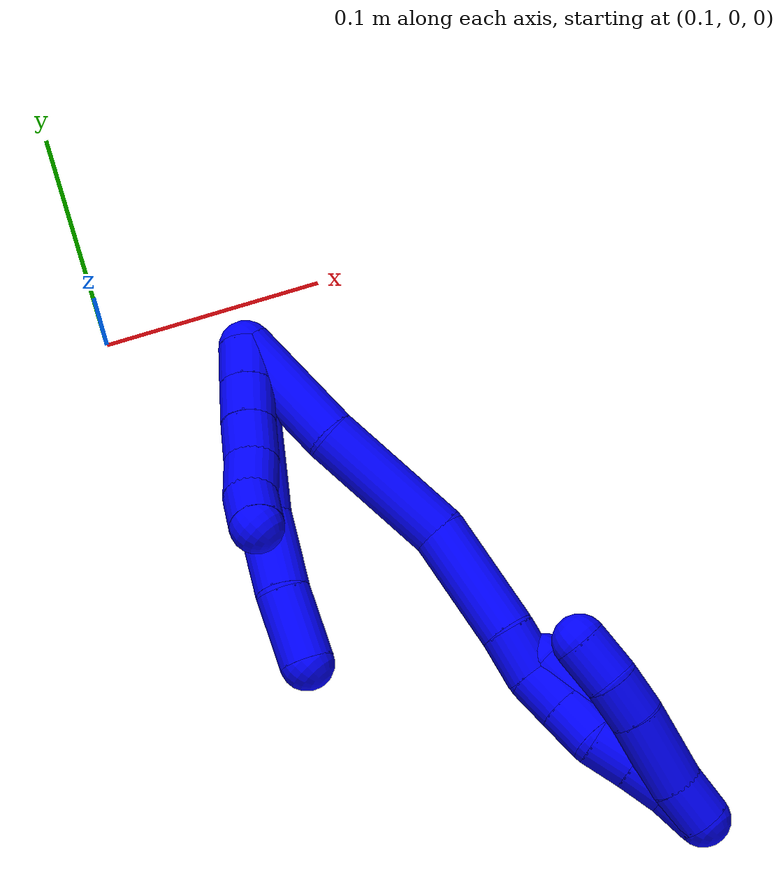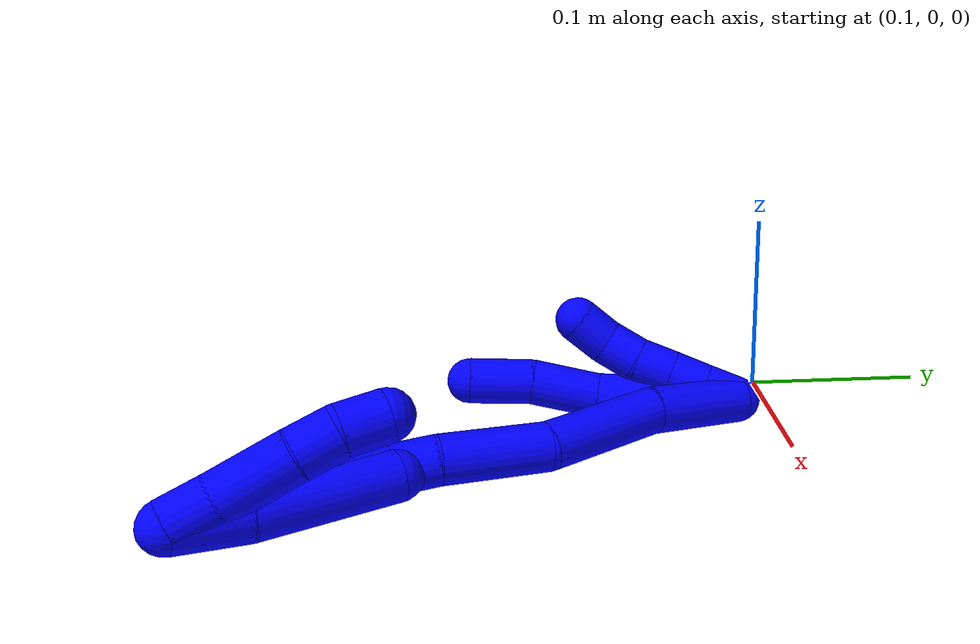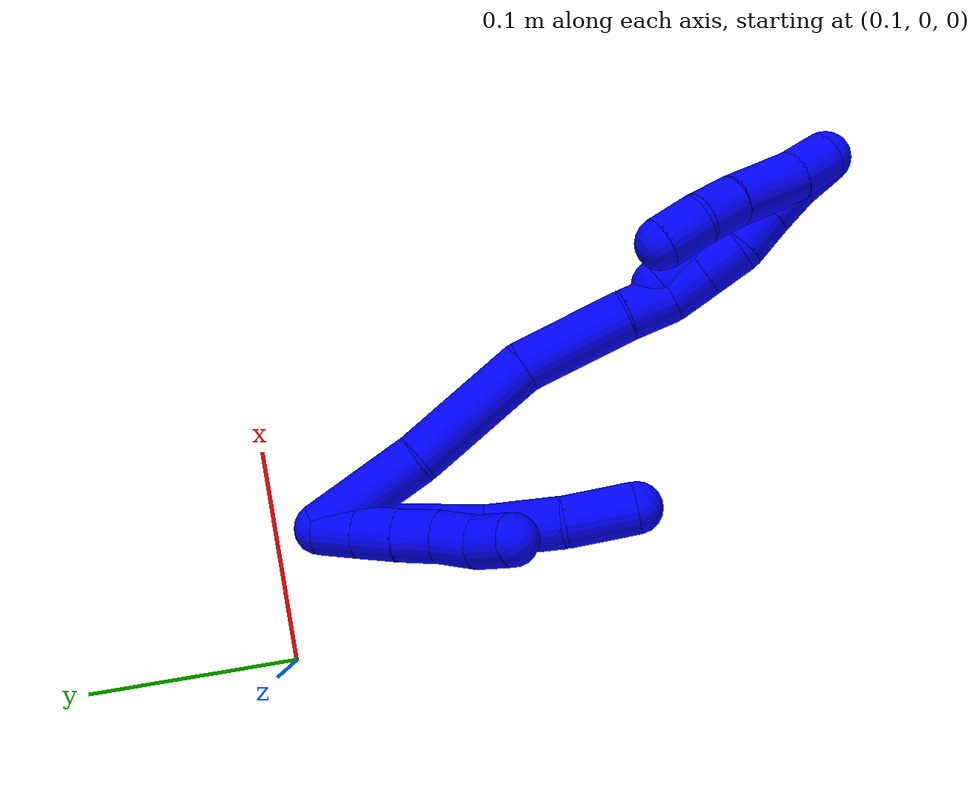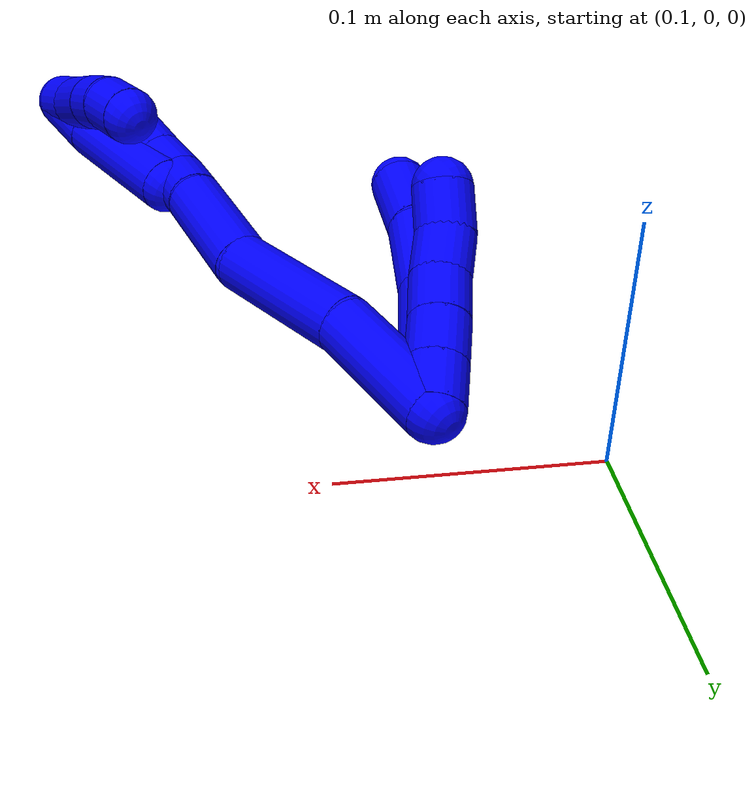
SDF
<sdf version="1.7">
 <world name="default">
  <plugin name="TubeGeneratorPlugin" filename="libtube_generator_plugin.so"/>
  <model name="photoneo_s_sensor">
   <static>1</static>
   <pose>0 0 2 1.57079 1.57079 3.14159</pose>
   <link name="link">
    <inertial><mass>0.1</mass></inertial>
    <sensor name="sensor" type="depth">
     <update_rate>30</update_rate>
     <camera>
      <horizontal_fov>1.22</horizontal_fov>
      <image><width>1920</width><height>1200</height><format>B8G8R8</format></image>
      <clip><near>0.1</near><far>4</far></clip>
      <depth_camera><output>points</output></depth_camera>
     </camera>
     <plugin name="camera_plugin" filename="libgazebo_ros_depth_camera.so">
      <baseline>0.2</baseline>
      <alwaysOn>1</alwaysOn>
      <updateRate>0.0</updateRate>
      <cameraName>camera_ir</cameraName>
      <imageTopicName>/camera/color/image_raw</imageTopicName>
      <cameraInfoTopicName>/camera/color/camera_info</cameraInfoTopicName>
      <depthImageTopicName>/camera/depth/image_raw</depthImageTopicName>
      <depthImageCameraInfoTopicName>/camera/depth/camera_info</depthImageCameraInfoTopicName>
      <pointCloudTopicName>/camera/depth/points</pointCloudTopicName>
      <frameName>fr_optical</frameName>
      <pointCloudCutoff>0.1</pointCloudCutoff>
      <pointCloudCutoffMax>2.0</pointCloudCutoffMax>
      <distortionK1>0</distortionK1>
      <distortionK2>0</distortionK2>
      <distortionK3>0</distortionK3>
      <distortionT1>0</distortionT1>
      <distortionT2>0</distortionT2>
      <CxPrime>0</CxPrime>
      <Cx>0</Cx>
      <Cy>0</Cy>
      <focalLength>0</focalLength>
      <hackBaseline>0</hackBaseline>
     </plugin>
    </sensor>
   </link>
  </model>
  <gravity>0 0 -9.8</gravity>
  <magnetic_field>6e-06 2.3e-05 -4.2e-05</magnetic_field>
  <atmosphere type="adiabatic"/>
  <physics name="default_physics" default="0" type="ode">
   <max_step_size>0.003</max_step_size>
   <real_time_factor>1</real_time_factor>
   <real_time_update_rate>1000</real_time_update_rate>
   <max_contacts>10000</max_contacts>
   <ode>
    <solver>
     <type>quick</type>
     <iters>100</iters>
     <sor>1.3</sor>
     <use_dynamic_moi_rescaling>0</use_dynamic_moi_rescaling>
    </solver>
    <constraints>
     <contact_max_correcting_vel>0</contact_max_correcting_vel>
     <contact_surface_layer>0.001</contact_surface_layer>
     <cfm>0</cfm>
     <erp>0.2</erp>
    </constraints>
   </ode>
  </physics>
  <scene><ambient>0.4 0.4 0.4 1</ambient><background>0.7 0.7 0.7 1</background><shadows>0</shadows></scene>
  <audio><device>default</device></audio>
  <spherical_coordinates>
   <surface_model>EARTH_WGS84</surface_model>
   <latitude_deg>0</latitude_deg>
   <longitude_deg>0</longitude_deg>
   <elevation>0</elevation>
   <heading_deg>0</heading_deg>
  </spherical_coordinates>
  <model name="bin">
   <static>1</static>
   <link name="bottom">
    <collision name="collision-bottom">
     <pose>0 0 -0.01 0 -0 0</pose>
     <geometry><box><size>0.8 0.6 0.02</size></box></geometry>
     <surface>
      <friction><ode><mu>100</mu><mu2>100</mu2></ode></friction>
      <contact><collide_bitmask>65535</collide_bitmask></contact>
     </surface>
    </collision>
   </link>
   <link name="west_wall">
    <collision name="collision-west_wall">
     <pose>-0.41 0 0.1 0 -0 0</pose>
     <geometry><box><size>0.02 0.6 0.2</size></box></geometry>
     <surface>
      <friction><ode><mu>100</mu><mu2>100</mu2></ode></friction>
      <contact><collide_bitmask>65535</collide_bitmask></contact>
     </surface>
    </collision>
   </link>
   <link name="east_wall">
    <collision name="collision-east_wall">
     <pose>0.41 0 0.1 0 -0 0</pose>
     <geometry><box><size>0.02 0.6 0.2</size></box></geometry>
     <surface>
      <friction><ode><mu>100</mu><mu2>100</mu2></ode></friction>
      <contact><collide_bitmask>65535</collide_bitmask></contact>
     </surface>
    </collision>
   </link>
   <link name="south_wall">
    <collision name="collision-south_wall">
     <pose>0 -0.31 0.1 0 -0 0</pose>
     <geometry><box><size>0.8 0.02 0.2</size></box></geometry>
     <surface>
      <friction><ode><mu>100</mu><mu2>100</mu2></ode></friction>
      <contact><collide_bitmask>65535</collide_bitmask></contact>
     </surface>
    </collision>
   </link>
   <link name="north_wall">
    <collision name="collision-north_wall">
     <pose>0 0.31 0.1 0 -0 0</pose>
     <geometry><box><size>0.8 0.02 0.2</size></box></geometry>
     <surface>
      <friction><ode><mu>100</mu><mu2>100</mu2></ode></friction>
      <contact><collide_bitmask>65535</collide_bitmask></contact>
     </surface>
    </collision>
   </link>
  </model>
  <model name="1">
   <static>0</static>
   <link name="1">
    <collision name="collision-cylinder-e_1_2_8">
     <pose>0.006554 -0.022432 0.031227 0.622931 0.168828 0.054469</pose>
     <geometry><cylinder><radius>0.0125</radius><length>0.078006</length></cylinder></geometry>
     <surface>
      <friction><ode><mu>1.16</mu><mu2>1.16</mu2><slip1>0</slip1><slip2>0</slip2></ode></friction>
      <contact><ode><kp>1e+06</kp><kd>1</kd><max_vel>0</max_vel><min_depth>0.001</min_depth></ode></contact>
     </surface>
    </collision>
    <visual name="visual-cylinder-e_1_2_8">
     <pose>0.006554 -0.022432 0.031227 0.622931 0.168828 0.054469</pose>
     <geometry><cylinder><radius>0.0125</radius><length>0.078006</length></cylinder></geometry>
     <material><ambient>0 0 1 1</ambient></material>
    </visual>
    <collision name="collision-cylinder-e_2_8_9">
     <pose>0.011634 -0.054156 0.078929 0.513543 -0.077746 -0.020423</pose>
     <geometry><cylinder><radius>0.0125</radius><length>0.037946</length></cylinder></geometry>
     <surface>
      <friction><ode><mu>1.16</mu><mu2>1.16</mu2><slip1>0</slip1><slip2>0</slip2></ode></friction>
      <contact><ode><kp>1e+06</kp><kd>1</kd><max_vel>0</max_vel><min_depth>0.001</min_depth></ode></contact>
     </surface>
    </collision>
    <visual name="visual-cylinder-e_2_8_9">
     <pose>0.011634 -0.054156 0.078929 0.513543 -0.077746 -0.020423</pose>
     <geometry><cylinder><radius>0.0125</radius><length>0.037946</length></cylinder></geometry>
     <material><ambient>0 0 1 1</ambient></material>
    </visual>
    <collision name="collision-cylinder-e_3_9_6">
     <pose>0.011627 -0.070247 0.110943 0.412448 0.086256 0.018055</pose>
     <geometry><cylinder><radius>0.0125</radius><length>0.034048</length></cylinder></geometry>
     <surface>
      <friction><ode><mu>1.16</mu><mu2>1.16</mu2><slip1>0</slip1><slip2>0</slip2></ode></friction>
      <contact><ode><kp>1e+06</kp><kd>1</kd><max_vel>0</max_vel><min_depth>0.001</min_depth></ode></contact>
     </surface>
    </collision>
    <visual name="visual-cylinder-e_3_9_6">
     <pose>0.011627 -0.070247 0.110943 0.412448 0.086256 0.018055</pose>
     <geometry><cylinder><radius>0.0125</radius><length>0.034048</length></cylinder></geometry>
     <material><ambient>0 0 1 1</ambient></material>
    </visual>
    <collision name="collision-cylinder-e_1_2_10">
     <pose>-0.001684 -0.006431 0.00747 0.710835 -0.169234 -0.062946</pose>
     <geometry><cylinder><radius>0.0125</radius><length>0.02</length></cylinder></geometry>
     <surface>
      <friction><ode><mu>1.16</mu><mu2>1.16</mu2><slip1>0</slip1><slip2>0</slip2></ode></friction>
      <contact><ode><kp>1e+06</kp><kd>1</kd><max_vel>0</max_vel><min_depth>0.001</min_depth></ode></contact>
     </surface>
    </collision>
    <visual name="visual-cylinder-e_1_2_10">
     <pose>-0.001684 -0.006431 0.00747 0.710835 -0.169234 -0.062946</pose>
     <geometry><cylinder><radius>0.0125</radius><length>0.02</length></cylinder></geometry>
     <material><ambient>0 0 1 1</ambient></material>
    </visual>
    <collision name="collision-cylinder-e_2_10_11">
     <pose>-0.005239 -0.019229 0.022421 0.705079 -0.188138 -0.069395</pose>
     <geometry><cylinder><radius>0.0125</radius><length>0.02</length></cylinder></geometry>
     <surface>
      <friction><ode><mu>1.16</mu><mu2>1.16</mu2><slip1>0</slip1><slip2>0</slip2></ode></friction>
      <contact><ode><kp>1e+06</kp><kd>1</kd><max_vel>0</max_vel><min_depth>0.001</min_depth></ode></contact>
     </surface>
    </collision>
    <visual name="visual-cylinder-e_2_10_11">
     <pose>-0.005239 -0.019229 0.022421 0.705079 -0.188138 -0.069395</pose>
     <geometry><cylinder><radius>0.0125</radius><length>0.02</length></cylinder></geometry>
     <material><ambient>0 0 1 1</ambient></material>
    </visual>
    <collision name="collision-cylinder-e_3_11_12">
     <pose>-0.008974 -0.031636 0.037651 0.662127 -0.187583 -0.064642</pose>
     <geometry><cylinder><radius>0.0125</radius><length>0.02</length></cylinder></geometry>
     <surface>
      <friction><ode><mu>1.16</mu><mu2>1.16</mu2><slip1>0</slip1><slip2>0</slip2></ode></friction>
      <contact><ode><kp>1e+06</kp><kd>1</kd><max_vel>0</max_vel><min_depth>0.001</min_depth></ode></contact>
     </surface>
    </collision>
    <visual name="visual-cylinder-e_3_11_12">
     <pose>-0.008974 -0.031636 0.037651 0.662127 -0.187583 -0.064642</pose>
     <geometry><cylinder><radius>0.0125</radius><length>0.02</length></cylinder></geometry>
     <material><ambient>0 0 1 1</ambient></material>
    </visual>
    <collision name="collision-cylinder-e_4_12_13">
     <pose>-0.014003 -0.044249 0.052239 0.765458 -0.321967 -0.130563</pose>
     <geometry><cylinder><radius>0.0125</radius><length>0.02</length></cylinder></geometry>
     <surface>
      <friction><ode><mu>1.16</mu><mu2>1.16</mu2><slip1>0</slip1><slip2>0</slip2></ode></friction>
      <contact><ode><kp>1e+06</kp><kd>1</kd><max_vel>0</max_vel><min_depth>0.001</min_depth></ode></contact>
     </surface>
    </collision>
    <visual name="visual-cylinder-e_4_12_13">
     <pose>-0.014003 -0.044249 0.052239 0.765458 -0.321967 -0.130563</pose>
     <geometry><cylinder><radius>0.0125</radius><length>0.02</length></cylinder></geometry>
     <material><ambient>0 0 1 1</ambient></material>
    </visual>
    <collision name="collision-cylinder-e_5_13_5">
     <pose>-0.022266 -0.055524 0.066283 0.57832 -0.535032 -0.16272</pose>
     <geometry><cylinder><radius>0.0125</radius><length>0.02</length></cylinder></geometry>
     <surface>
      <friction><ode><mu>1.16</mu><mu2>1.16</mu2><slip1>0</slip1><slip2>0</slip2></ode></friction>
      <contact><ode><kp>1e+06</kp><kd>1</kd><max_vel>0</max_vel><min_depth>0.001</min_depth></ode></contact>
     </surface>
    </collision>
    <visual name="visual-cylinder-e_5_13_5">
     <pose>-0.022266 -0.055524 0.066283 0.57832 -0.535032 -0.16272</pose>
     <geometry><cylinder><radius>0.0125</radius><length>0.02</length></cylinder></geometry>
     <material><ambient>0 0 1 1</ambient></material>
    </visual>
    <collision name="collision-cylinder-e_1_2_14">
     <pose>0.000318 6.2e-05 0.028342 -0.00219 0.011219 -1.2e-05</pose>
     <geometry><cylinder><radius>0.0125</radius><length>0.056689</length></cylinder></geometry>
     <surface>
      <friction><ode><mu>1.16</mu><mu2>1.16</mu2><slip1>0</slip1><slip2>0</slip2></ode></friction>
      <contact><ode><kp>1e+06</kp><kd>1</kd><max_vel>0</max_vel><min_depth>0.001</min_depth></ode></contact>
     </surface>
    </collision>
    <visual name="visual-cylinder-e_1_2_14">
     <pose>0.000318 6.2e-05 0.028342 -0.00219 0.011219 -1.2e-05</pose>
     <geometry><cylinder><radius>0.0125</radius><length>0.056689</length></cylinder></geometry>
     <material><ambient>0 0 1 1</ambient></material>
    </visual>
    <collision name="collision-cylinder-e_2_14_15">
     <pose>0.005153 0.004053 0.088931 -0.121249 0.138171 -0.0084</pose>
     <geometry><cylinder><radius>0.0125</radius><length>0.065594</length></cylinder></geometry>
     <surface>
      <friction><ode><mu>1.16</mu><mu2>1.16</mu2><slip1>0</slip1><slip2>0</slip2></ode></friction>
      <contact><ode><kp>1e+06</kp><kd>1</kd><max_vel>0</max_vel><min_depth>0.001</min_depth></ode></contact>
     </surface>
    </collision>
    <visual name="visual-cylinder-e_2_14_15">
     <pose>0.005153 0.004053 0.088931 -0.121249 0.138171 -0.0084</pose>
     <geometry><cylinder><radius>0.0125</radius><length>0.065594</length></cylinder></geometry>
     <material><ambient>0 0 1 1</ambient></material>
    </visual>
    <collision name="collision-cylinder-e_3_15_16">
     <pose>0.0119 0.004065 0.148032 0.144824 0.081958 0.005948</pose>
     <geometry><cylinder><radius>0.0125</radius><length>0.054462</length></cylinder></geometry>
     <surface>
      <friction><ode><mu>1.16</mu><mu2>1.16</mu2><slip1>0</slip1><slip2>0</slip2></ode></friction>
      <contact><ode><kp>1e+06</kp><kd>1</kd><max_vel>0</max_vel><min_depth>0.001</min_depth></ode></contact>
     </surface>
    </collision>
    <visual name="visual-cylinder-e_3_15_16">
     <pose>0.0119 0.004065 0.148032 0.144824 0.081958 0.005948</pose>
     <geometry><cylinder><radius>0.0125</radius><length>0.054462</length></cylinder></geometry>
     <material><ambient>0 0 1 1</ambient></material>
    </visual>
    <collision name="collision-cylinder-e_4_16_17">
     <pose>0.016477 -0.001918 0.18588 0.185866 0.206943 0.019356</pose>
     <geometry><cylinder><radius>0.0125</radius><length>0.022859</length></cylinder></geometry>
     <surface>
      <friction><ode><mu>1.16</mu><mu2>1.16</mu2><slip1>0</slip1><slip2>0</slip2></ode></friction>
      <contact><ode><kp>1e+06</kp><kd>1</kd><max_vel>0</max_vel><min_depth>0.001</min_depth></ode></contact>
     </surface>
    </collision>
    <visual name="visual-cylinder-e_4_16_17">
     <pose>0.016477 -0.001918 0.18588 0.185866 0.206943 0.019356</pose>
     <geometry><cylinder><radius>0.0125</radius><length>0.022859</length></cylinder></geometry>
     <material><ambient>0 0 1 1</ambient></material>
    </visual>
    <collision name="collision-cylinder-e_5_17_18">
     <pose>0.018614 -0.004008 0.206886 0.002303 -0.021164 -2.4e-05</pose>
     <geometry><cylinder><radius>0.0125</radius><length>0.02003</length></cylinder></geometry>
     <surface>
      <friction><ode><mu>1.16</mu><mu2>1.16</mu2><slip1>0</slip1><slip2>0</slip2></ode></friction>
      <contact><ode><kp>1e+06</kp><kd>1</kd><max_vel>0</max_vel><min_depth>0.001</min_depth></ode></contact>
     </surface>
    </collision>
    <visual name="visual-cylinder-e_5_17_18">
     <pose>0.018614 -0.004008 0.206886 0.002303 -0.021164 -2.4e-05</pose>
     <geometry><cylinder><radius>0.0125</radius><length>0.02003</length></cylinder></geometry>
     <material><ambient>0 0 1 1</ambient></material>
    </visual>
    <collision name="collision-cylinder-e_6_18_19">
     <pose>0.017597 -0.004167 0.226988 0.013411 -0.079541 -0.000534</pose>
     <geometry><cylinder><radius>0.0125</radius><length>0.020246</length></cylinder></geometry>
     <surface>
      <friction><ode><mu>1.16</mu><mu2>1.16</mu2><slip1>0</slip1><slip2>0</slip2></ode></friction>
      <contact><ode><kp>1e+06</kp><kd>1</kd><max_vel>0</max_vel><min_depth>0.001</min_depth></ode></contact>
     </surface>
    </collision>
    <visual name="visual-cylinder-e_6_18_19">
     <pose>0.017597 -0.004167 0.226988 0.013411 -0.079541 -0.000534</pose>
     <geometry><cylinder><radius>0.0125</radius><length>0.020246</length></cylinder></geometry>
     <material><ambient>0 0 1 1</ambient></material>
    </visual>
    <collision name="collision-cylinder-e_7_19_20">
     <pose>0.017885 -0.001597 0.246663 -0.275066 0.109192 -0.015128</pose>
     <geometry><cylinder><radius>0.0125</radius><length>0.020037</length></cylinder></geometry>
     <surface>
      <friction><ode><mu>1.16</mu><mu2>1.16</mu2><slip1>0</slip1><slip2>0</slip2></ode></friction>
      <contact><ode><kp>1e+06</kp><kd>1</kd><max_vel>0</max_vel><min_depth>0.001</min_depth></ode></contact>
     </surface>
    </collision>
    <visual name="visual-cylinder-e_7_19_20">
     <pose>0.017885 -0.001597 0.246663 -0.275066 0.109192 -0.015128</pose>
     <geometry><cylinder><radius>0.0125</radius><length>0.020037</length></cylinder></geometry>
     <material><ambient>0 0 1 1</ambient></material>
    </visual>
    <collision name="collision-cylinder-e_8_20_21">
     <pose>0.020223 0.003415 0.265935 -0.233773 0.124534 -0.014642</pose>
     <geometry><cylinder><radius>0.0125</radius><length>0.020073</length></cylinder></geometry>
     <surface>
      <friction><ode><mu>1.16</mu><mu2>1.16</mu2><slip1>0</slip1><slip2>0</slip2></ode></friction>
      <contact><ode><kp>1e+06</kp><kd>1</kd><max_vel>0</max_vel><min_depth>0.001</min_depth></ode></contact>
     </surface>
    </collision>
    <visual name="visual-cylinder-e_8_20_21">
     <pose>0.020223 0.003415 0.265935 -0.233773 0.124534 -0.014642</pose>
     <geometry><cylinder><radius>0.0125</radius><length>0.020073</length></cylinder></geometry>
     <material><ambient>0 0 1 1</ambient></material>
    </visual>
    <collision name="collision-cylinder-e_9_21_1">
     <pose>0.022915 0.006799 0.285465 -0.109024 0.144946 -0.007923</pose>
     <geometry><cylinder><radius>0.0125</radius><length>0.020012</length></cylinder></geometry>
     <surface>
      <friction><ode><mu>1.16</mu><mu2>1.16</mu2><slip1>0</slip1><slip2>0</slip2></ode></friction>
      <contact><ode><kp>1e+06</kp><kd>1</kd><max_vel>0</max_vel><min_depth>0.001</min_depth></ode></contact>
     </surface>
    </collision>
    <visual name="visual-cylinder-e_9_21_1">
     <pose>0.022915 0.006799 0.285465 -0.109024 0.144946 -0.007923</pose>
     <geometry><cylinder><radius>0.0125</radius><length>0.020012</length></cylinder></geometry>
     <material><ambient>0 0 1 1</ambient></material>
    </visual>
    <collision name="collision-cylinder-e_1_1_22">
     <pose>0.019673 0.007719 0.285787 3.12512 -0.45748 -3.07087</pose>
     <geometry><cylinder><radius>0.0125</radius><length>0.021225</length></cylinder></geometry>
     <surface>
      <friction><ode><mu>1.16</mu><mu2>1.16</mu2><slip1>0</slip1><slip2>0</slip2></ode></friction>
      <contact><ode><kp>1e+06</kp><kd>1</kd><max_vel>0</max_vel><min_depth>0.001</min_depth></ode></contact>
     </surface>
    </collision>
    <visual name="visual-cylinder-e_1_1_22">
     <pose>0.019673 0.007719 0.285787 3.12512 -0.45748 -3.07087</pose>
     <geometry><cylinder><radius>0.0125</radius><length>0.021225</length></cylinder></geometry>
     <material><ambient>0 0 1 1</ambient></material>
    </visual>
    <collision name="collision-cylinder-e_2_22_23">
     <pose>0.005371 0.009185 0.260662 -3.038 -0.54978 2.778</pose>
     <geometry><cylinder><radius>0.0125</radius><length>0.036801</length></cylinder></geometry>
     <surface>
      <friction><ode><mu>1.16</mu><mu2>1.16</mu2><slip1>0</slip1><slip2>0</slip2></ode></friction>
      <contact><ode><kp>1e+06</kp><kd>1</kd><max_vel>0</max_vel><min_depth>0.001</min_depth></ode></contact>
     </surface>
    </collision>
    <visual name="visual-cylinder-e_2_22_23">
     <pose>0.005371 0.009185 0.260662 -3.038 -0.54978 2.778</pose>
     <geometry><cylinder><radius>0.0125</radius><length>0.036801</length></cylinder></geometry>
     <material><ambient>0 0 1 1</ambient></material>
    </visual>
    <collision name="collision-cylinder-e_3_23_24">
     <pose>-0.008903 0.011104 0.236108 -3.10847 -0.479812 3.00639</pose>
     <geometry><cylinder><radius>0.0125</radius><length>0.020189</length></cylinder></geometry>
     <surface>
      <friction><ode><mu>1.16</mu><mu2>1.16</mu2><slip1>0</slip1><slip2>0</slip2></ode></friction>
      <contact><ode><kp>1e+06</kp><kd>1</kd><max_vel>0</max_vel><min_depth>0.001</min_depth></ode></contact>
     </surface>
    </collision>
    <visual name="visual-cylinder-e_3_23_24">
     <pose>-0.008903 0.011104 0.236108 -3.10847 -0.479812 3.00639</pose>
     <geometry><cylinder><radius>0.0125</radius><length>0.020189</length></cylinder></geometry>
     <material><ambient>0 0 1 1</ambient></material>
    </visual>
    <collision name="collision-cylinder-e_4_24_4">
     <pose>-0.016272 0.011516 0.216609 -3.13067 -0.251406 3.05523</pose>
     <geometry><cylinder><radius>0.0125</radius><length>0.021785</length></cylinder></geometry>
     <surface>
      <friction><ode><mu>1.16</mu><mu2>1.16</mu2><slip1>0</slip1><slip2>0</slip2></ode></friction>
      <contact><ode><kp>1e+06</kp><kd>1</kd><max_vel>0</max_vel><min_depth>0.001</min_depth></ode></contact>
     </surface>
    </collision>
    <visual name="visual-cylinder-e_4_24_4">
     <pose>-0.016272 0.011516 0.216609 -3.13067 -0.251406 3.05523</pose>
     <geometry><cylinder><radius>0.0125</radius><length>0.021785</length></cylinder></geometry>
     <material><ambient>0 0 1 1</ambient></material>
    </visual>
    <collision name="collision-cylinder-e_1_1_25">
     <pose>0.024357 0.007879 0.278754 -3.14145 -0.000226 1.99058</pose>
     <geometry><cylinder><radius>0.0125</radius><length>0.033106</length></cylinder></geometry>
     <surface>
      <friction><ode><mu>1.16</mu><mu2>1.16</mu2><slip1>0</slip1><slip2>0</slip2></ode></friction>
      <contact><ode><kp>1e+06</kp><kd>1</kd><max_vel>0</max_vel><min_depth>0.001</min_depth></ode></contact>
     </surface>
    </collision>
    <visual name="visual-cylinder-e_1_1_25">
     <pose>0.024357 0.007879 0.278754 -3.14145 -0.000226 1.99058</pose>
     <geometry><cylinder><radius>0.0125</radius><length>0.033106</length></cylinder></geometry>
     <material><ambient>0 0 1 1</ambient></material>
    </visual>
    <collision name="collision-cylinder-e_2_25_3">
     <pose>0.020862 0.005854 0.228998 3.08062 -0.104564 -2.08635</pose>
     <geometry><cylinder><radius>0.0125</radius><length>0.066894</length></cylinder></geometry>
     <surface>
      <friction><ode><mu>1.16</mu><mu2>1.16</mu2><slip1>0</slip1><slip2>0</slip2></ode></friction>
      <contact><ode><kp>1e+06</kp><kd>1</kd><max_vel>0</max_vel><min_depth>0.001</min_depth></ode></contact>
     </surface>
    </collision>
    <visual name="visual-cylinder-e_2_25_3">
     <pose>0.020862 0.005854 0.228998 3.08062 -0.104564 -2.08635</pose>
     <geometry><cylinder><radius>0.0125</radius><length>0.066894</length></cylinder></geometry>
     <material><ambient>0 0 1 1</ambient></material>
    </visual>
    <collision name="collision-sphere-3">
     <pose>0.017371 0.003827 0.195796 0 -0 0</pose>
     <geometry><sphere><radius>0.0125</radius></sphere></geometry>
     <surface>
      <friction><ode><mu>1.16</mu><mu2>1.16</mu2><slip1>0</slip1><slip2>0</slip2></ode></friction>
      <contact><ode><kp>1e+06</kp><kd>1</kd><max_vel>0</max_vel><min_depth>0.001</min_depth></ode></contact>
     </surface>
    </collision>
    <visual name="visual-sphere-3">
     <pose>0.017371 0.003827 0.195796 0 -0 0</pose>
     <geometry><sphere><radius>0.0125</radius></sphere></geometry>
     <material><ambient>0 0 1 1</ambient></material>
    </visual>
    <collision name="collision-sphere-25">
     <pose>0.024353 0.007881 0.262201 0 -0 0</pose>
     <geometry><sphere><radius>0.0125</radius></sphere></geometry>
     <surface>
      <friction><ode><mu>1.16</mu><mu2>1.16</mu2><slip1>0</slip1><slip2>0</slip2></ode></friction>
      <contact><ode><kp>1e+06</kp><kd>1</kd><max_vel>0</max_vel><min_depth>0.001</min_depth></ode></contact>
     </surface>
    </collision>
    <visual name="visual-sphere-25">
     <pose>0.024353 0.007881 0.262201 0 -0 0</pose>
     <geometry><sphere><radius>0.0125</radius></sphere></geometry>
     <material><ambient>0 0 1 1</ambient></material>
    </visual>
    <collision name="collision-sphere-4">
     <pose>-0.018982 0.011631 0.206059 0 -0 0</pose>
     <geometry><sphere><radius>0.0125</radius></sphere></geometry>
     <surface>
      <friction><ode><mu>1.16</mu><mu2>1.16</mu2><slip1>0</slip1><slip2>0</slip2></ode></friction>
      <contact><ode><kp>1e+06</kp><kd>1</kd><max_vel>0</max_vel><min_depth>0.001</min_depth></ode></contact>
     </surface>
    </collision>
    <visual name="visual-sphere-4">
     <pose>-0.018982 0.011631 0.206059 0 -0 0</pose>
     <geometry><sphere><radius>0.0125</radius></sphere></geometry>
     <material><ambient>0 0 1 1</ambient></material>
    </visual>
    <collision name="collision-sphere-24">
     <pose>-0.013563 0.0114 0.227158 0 -0 0</pose>
     <geometry><sphere><radius>0.0125</radius></sphere></geometry>
     <surface>
      <friction><ode><mu>1.16</mu><mu2>1.16</mu2><slip1>0</slip1><slip2>0</slip2></ode></friction>
      <contact><ode><kp>1e+06</kp><kd>1</kd><max_vel>0</max_vel><min_depth>0.001</min_depth></ode></contact>
     </surface>
    </collision>
    <visual name="visual-sphere-24">
     <pose>-0.013563 0.0114 0.227158 0 -0 0</pose>
     <geometry><sphere><radius>0.0125</radius></sphere></geometry>
     <material><ambient>0 0 1 1</ambient></material>
    </visual>
    <collision name="collision-sphere-23">
     <pose>-0.004243 0.010807 0.245057 0 -0 0</pose>
     <geometry><sphere><radius>0.0125</radius></sphere></geometry>
     <surface>
      <friction><ode><mu>1.16</mu><mu2>1.16</mu2><slip1>0</slip1><slip2>0</slip2></ode></friction>
      <contact><ode><kp>1e+06</kp><kd>1</kd><max_vel>0</max_vel><min_depth>0.001</min_depth></ode></contact>
     </surface>
    </collision>
    <visual name="visual-sphere-23">
     <pose>-0.004243 0.010807 0.245057 0 -0 0</pose>
     <geometry><sphere><radius>0.0125</radius></sphere></geometry>
     <material><ambient>0 0 1 1</ambient></material>
    </visual>
    <collision name="collision-sphere-22">
     <pose>0.014985 0.007562 0.276267 0 -0 0</pose>
     <geometry><sphere><radius>0.0125</radius></sphere></geometry>
     <surface>
      <friction><ode><mu>1.16</mu><mu2>1.16</mu2><slip1>0</slip1><slip2>0</slip2></ode></friction>
      <contact><ode><kp>1e+06</kp><kd>1</kd><max_vel>0</max_vel><min_depth>0.001</min_depth></ode></contact>
     </surface>
    </collision>
    <visual name="visual-sphere-22">
     <pose>0.014985 0.007562 0.276267 0 -0 0</pose>
     <geometry><sphere><radius>0.0125</radius></sphere></geometry>
     <material><ambient>0 0 1 1</ambient></material>
    </visual>
    <collision name="collision-sphere-1">
     <pose>0.02436 0.007876 0.295307 0 -0 0</pose>
     <geometry><sphere><radius>0.0125</radius></sphere></geometry>
     <surface>
      <friction><ode><mu>1.16</mu><mu2>1.16</mu2><slip1>0</slip1><slip2>0</slip2></ode></friction>
      <contact><ode><kp>1e+06</kp><kd>1</kd><max_vel>0</max_vel><min_depth>0.001</min_depth></ode></contact>
     </surface>
    </collision>
    <visual name="visual-sphere-1">
     <pose>0.02436 0.007876 0.295307 0 -0 0</pose>
     <geometry><sphere><radius>0.0125</radius></sphere></geometry>
     <material><ambient>0 0 1 1</ambient></material>
    </visual>
    <collision name="collision-sphere-21">
     <pose>0.02147 0.005721 0.275623 0 -0 0</pose>
     <geometry><sphere><radius>0.0125</radius></sphere></geometry>
     <surface>
      <friction><ode><mu>1.16</mu><mu2>1.16</mu2><slip1>0</slip1><slip2>0</slip2></ode></friction>
      <contact><ode><kp>1e+06</kp><kd>1</kd><max_vel>0</max_vel><min_depth>0.001</min_depth></ode></contact>
     </surface>
    </collision>
    <visual name="visual-sphere-21">
     <pose>0.02147 0.005721 0.275623 0 -0 0</pose>
     <geometry><sphere><radius>0.0125</radius></sphere></geometry>
     <material><ambient>0 0 1 1</ambient></material>
    </visual>
    <collision name="collision-sphere-11">
     <pose>-0.007109 -0.025596 0.029902 0 -0 0</pose>
     <geometry><sphere><radius>0.0125</radius></sphere></geometry>
     <surface>
      <friction><ode><mu>1.16</mu><mu2>1.16</mu2><slip1>0</slip1><slip2>0</slip2></ode></friction>
      <contact><ode><kp>1e+06</kp><kd>1</kd><max_vel>0</max_vel><min_depth>0.001</min_depth></ode></contact>
     </surface>
    </collision>
    <visual name="visual-sphere-11">
     <pose>-0.007109 -0.025596 0.029902 0 -0 0</pose>
     <geometry><sphere><radius>0.0125</radius></sphere></geometry>
     <material><ambient>0 0 1 1</ambient></material>
    </visual>
    <collision name="collision-sphere-10">
     <pose>-0.003369 -0.012863 0.01494 0 -0 0</pose>
     <geometry><sphere><radius>0.0125</radius></sphere></geometry>
     <surface>
      <friction><ode><mu>1.16</mu><mu2>1.16</mu2><slip1>0</slip1><slip2>0</slip2></ode></friction>
      <contact><ode><kp>1e+06</kp><kd>1</kd><max_vel>0</max_vel><min_depth>0.001</min_depth></ode></contact>
     </surface>
    </collision>
    <visual name="visual-sphere-10">
     <pose>-0.003369 -0.012863 0.01494 0 -0 0</pose>
     <geometry><sphere><radius>0.0125</radius></sphere></geometry>
     <material><ambient>0 0 1 1</ambient></material>
    </visual>
    <collision name="collision-sphere-6">
     <pose>0.013093 -0.077046 0.126482 0 -0 0</pose>
     <geometry><sphere><radius>0.0125</radius></sphere></geometry>
     <surface>
      <friction><ode><mu>1.16</mu><mu2>1.16</mu2><slip1>0</slip1><slip2>0</slip2></ode></friction>
      <contact><ode><kp>1e+06</kp><kd>1</kd><max_vel>0</max_vel><min_depth>0.001</min_depth></ode></contact>
     </surface>
    </collision>
    <visual name="visual-sphere-6">
     <pose>0.013093 -0.077046 0.126482 0 -0 0</pose>
     <geometry><sphere><radius>0.0125</radius></sphere></geometry>
     <material><ambient>0 0 1 1</ambient></material>
    </visual>
    <collision name="collision-sphere-9">
     <pose>0.01016 -0.063448 0.095405 0 -0 0</pose>
     <geometry><sphere><radius>0.0125</radius></sphere></geometry>
     <surface>
      <friction><ode><mu>1.16</mu><mu2>1.16</mu2><slip1>0</slip1><slip2>0</slip2></ode></friction>
      <contact><ode><kp>1e+06</kp><kd>1</kd><max_vel>0</max_vel><min_depth>0.001</min_depth></ode></contact>
     </surface>
    </collision>
    <visual name="visual-sphere-9">
     <pose>0.01016 -0.063448 0.095405 0 -0 0</pose>
     <geometry><sphere><radius>0.0125</radius></sphere></geometry>
     <material><ambient>0 0 1 1</ambient></material>
    </visual>
    <collision name="collision-sphere-2">
     <geometry><sphere><radius>0.0125</radius></sphere></geometry>
     <surface>
      <friction><ode><mu>1.16</mu><mu2>1.16</mu2><slip1>0</slip1><slip2>0</slip2></ode></friction>
      <contact><ode><kp>1e+06</kp><kd>1</kd><max_vel>0</max_vel><min_depth>0.001</min_depth></ode></contact>
     </surface>
    </collision>
    <visual name="visual-sphere-2">
     <geometry><sphere><radius>0.0125</radius></sphere></geometry>
     <material><ambient>0 0 1 1</ambient></material>
    </visual>
    <collision name="collision-sphere-19">
     <pose>0.016793 -0.004302 0.237078 0 -0 0</pose>
     <geometry><sphere><radius>0.0125</radius></sphere></geometry>
     <surface>
      <friction><ode><mu>1.16</mu><mu2>1.16</mu2><slip1>0</slip1><slip2>0</slip2></ode></friction>
      <contact><ode><kp>1e+06</kp><kd>1</kd><max_vel>0</max_vel><min_depth>0.001</min_depth></ode></contact>
     </surface>
    </collision>
    <visual name="visual-sphere-19">
     <pose>0.016793 -0.004302 0.237078 0 -0 0</pose>
     <geometry><sphere><radius>0.0125</radius></sphere></geometry>
     <material><ambient>0 0 1 1</ambient></material>
    </visual>
    <collision name="collision-sphere-8">
     <pose>0.013107 -0.044863 0.062454 0 -0 0</pose>
     <geometry><sphere><radius>0.0125</radius></sphere></geometry>
     <surface>
      <friction><ode><mu>1.16</mu><mu2>1.16</mu2><slip1>0</slip1><slip2>0</slip2></ode></friction>
      <contact><ode><kp>1e+06</kp><kd>1</kd><max_vel>0</max_vel><min_depth>0.001</min_depth></ode></contact>
     </surface>
    </collision>
    <visual name="visual-sphere-8">
     <pose>0.013107 -0.044863 0.062454 0 -0 0</pose>
     <geometry><sphere><radius>0.0125</radius></sphere></geometry>
     <material><ambient>0 0 1 1</ambient></material>
    </visual>
    <collision name="collision-sphere-12">
     <pose>-0.010839 -0.037676 0.045399 0 -0 0</pose>
     <geometry><sphere><radius>0.0125</radius></sphere></geometry>
     <surface>
      <friction><ode><mu>1.16</mu><mu2>1.16</mu2><slip1>0</slip1><slip2>0</slip2></ode></friction>
      <contact><ode><kp>1e+06</kp><kd>1</kd><max_vel>0</max_vel><min_depth>0.001</min_depth></ode></contact>
     </surface>
    </collision>
    <visual name="visual-sphere-12">
     <pose>-0.010839 -0.037676 0.045399 0 -0 0</pose>
     <geometry><sphere><radius>0.0125</radius></sphere></geometry>
     <material><ambient>0 0 1 1</ambient></material>
    </visual>
    <collision name="collision-sphere-13">
     <pose>-0.017167 -0.050822 0.05908 0 -0 0</pose>
     <geometry><sphere><radius>0.0125</radius></sphere></geometry>
     <surface>
      <friction><ode><mu>1.16</mu><mu2>1.16</mu2><slip1>0</slip1><slip2>0</slip2></ode></friction>
      <contact><ode><kp>1e+06</kp><kd>1</kd><max_vel>0</max_vel><min_depth>0.001</min_depth></ode></contact>
     </surface>
    </collision>
    <visual name="visual-sphere-13">
     <pose>-0.017167 -0.050822 0.05908 0 -0 0</pose>
     <geometry><sphere><radius>0.0125</radius></sphere></geometry>
     <material><ambient>0 0 1 1</ambient></material>
    </visual>
    <collision name="collision-sphere-5">
     <pose>-0.027365 -0.060226 0.073487 0 -0 0</pose>
     <geometry><sphere><radius>0.0125</radius></sphere></geometry>
     <surface>
      <friction><ode><mu>1.16</mu><mu2>1.16</mu2><slip1>0</slip1><slip2>0</slip2></ode></friction>
      <contact><ode><kp>1e+06</kp><kd>1</kd><max_vel>0</max_vel><min_depth>0.001</min_depth></ode></contact>
     </surface>
    </collision>
    <visual name="visual-sphere-5">
     <pose>-0.027365 -0.060226 0.073487 0 -0 0</pose>
     <geometry><sphere><radius>0.0125</radius></sphere></geometry>
     <material><ambient>0 0 1 1</ambient></material>
    </visual>
    <collision name="collision-sphere-14">
     <pose>0.000636 0.000124 0.056685 0 -0 0</pose>
     <geometry><sphere><radius>0.0125</radius></sphere></geometry>
     <surface>
      <friction><ode><mu>1.16</mu><mu2>1.16</mu2><slip1>0</slip1><slip2>0</slip2></ode></friction>
      <contact><ode><kp>1e+06</kp><kd>1</kd><max_vel>0</max_vel><min_depth>0.001</min_depth></ode></contact>
     </surface>
    </collision>
    <visual name="visual-sphere-14">
     <pose>0.000636 0.000124 0.056685 0 -0 0</pose>
     <geometry><sphere><radius>0.0125</radius></sphere></geometry>
     <material><ambient>0 0 1 1</ambient></material>
    </visual>
    <collision name="collision-sphere-15">
     <pose>0.00967 0.007982 0.121177 0 -0 0</pose>
     <geometry><sphere><radius>0.0125</radius></sphere></geometry>
     <surface>
      <friction><ode><mu>1.16</mu><mu2>1.16</mu2><slip1>0</slip1><slip2>0</slip2></ode></friction>
      <contact><ode><kp>1e+06</kp><kd>1</kd><max_vel>0</max_vel><min_depth>0.001</min_depth></ode></contact>
     </surface>
    </collision>
    <visual name="visual-sphere-15">
     <pose>0.00967 0.007982 0.121177 0 -0 0</pose>
     <geometry><sphere><radius>0.0125</radius></sphere></geometry>
     <material><ambient>0 0 1 1</ambient></material>
    </visual>
    <collision name="collision-sphere-16">
     <pose>0.014129 0.000149 0.174888 0 -0 0</pose>
     <geometry><sphere><radius>0.0125</radius></sphere></geometry>
     <surface>
      <friction><ode><mu>1.16</mu><mu2>1.16</mu2><slip1>0</slip1><slip2>0</slip2></ode></friction>
      <contact><ode><kp>1e+06</kp><kd>1</kd><max_vel>0</max_vel><min_depth>0.001</min_depth></ode></contact>
     </surface>
    </collision>
    <visual name="visual-sphere-16">
     <pose>0.014129 0.000149 0.174888 0 -0 0</pose>
     <geometry><sphere><radius>0.0125</radius></sphere></geometry>
     <material><ambient>0 0 1 1</ambient></material>
    </visual>
    <collision name="collision-sphere-17">
     <pose>0.018826 -0.003985 0.196873 0 -0 0</pose>
     <geometry><sphere><radius>0.0125</radius></sphere></geometry>
     <surface>
      <friction><ode><mu>1.16</mu><mu2>1.16</mu2><slip1>0</slip1><slip2>0</slip2></ode></friction>
      <contact><ode><kp>1e+06</kp><kd>1</kd><max_vel>0</max_vel><min_depth>0.001</min_depth></ode></contact>
     </surface>
    </collision>
    <visual name="visual-sphere-17">
     <pose>0.018826 -0.003985 0.196873 0 -0 0</pose>
     <geometry><sphere><radius>0.0125</radius></sphere></geometry>
     <material><ambient>0 0 1 1</ambient></material>
    </visual>
    <collision name="collision-sphere-18">
     <pose>0.018402 -0.004031 0.216898 0 -0 0</pose>
     <geometry><sphere><radius>0.0125</radius></sphere></geometry>
     <surface>
      <friction><ode><mu>1.16</mu><mu2>1.16</mu2><slip1>0</slip1><slip2>0</slip2></ode></friction>
      <contact><ode><kp>1e+06</kp><kd>1</kd><max_vel>0</max_vel><min_depth>0.001</min_depth></ode></contact>
     </surface>
    </collision>
    <visual name="visual-sphere-18">
     <pose>0.018402 -0.004031 0.216898 0 -0 0</pose>
     <geometry><sphere><radius>0.0125</radius></sphere></geometry>
     <material><ambient>0 0 1 1</ambient></material>
    </visual>
    <collision name="collision-sphere-20">
     <pose>0.018977 0.001108 0.256247 0 -0 0</pose>
     <geometry><sphere><radius>0.0125</radius></sphere></geometry>
     <surface>
      <friction><ode><mu>1.16</mu><mu2>1.16</mu2><slip1>0</slip1><slip2>0</slip2></ode></friction>
      <contact><ode><kp>1e+06</kp><kd>1</kd><max_vel>0</max_vel><min_depth>0.001</min_depth></ode></contact>
     </surface>
    </collision>
    <visual name="visual-sphere-20">
     <pose>0.018977 0.001108 0.256247 0 -0 0</pose>
     <geometry><sphere><radius>0.0125</radius></sphere></geometry>
     <material><ambient>0 0 1 1</ambient></material>
    </visual>
    <inertial>
     <pose>0.007894 -0.009672 0.142806 0 -0 0</pose>
     <mass>0.75</mass>
     <inertia><ixx>8.3e-05</ixx><ixy>0</ixy><ixz>0</ixz><iyy>0.000117</iyy><iyz>0</iyz><izz>5.4e-05</izz></inertia>
    </inertial>
   </link>
   <pose>0.159675 -0.022004 0.011939 -0.97093 1.39744 -2.09618</pose>
  </model>
 </world>
</sdf>
